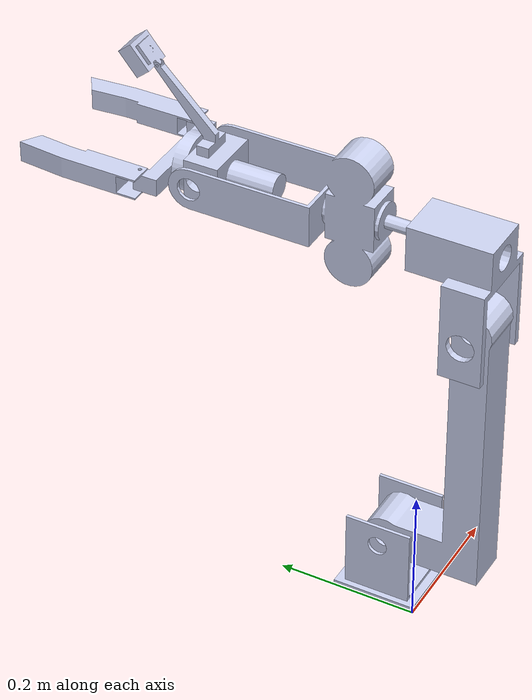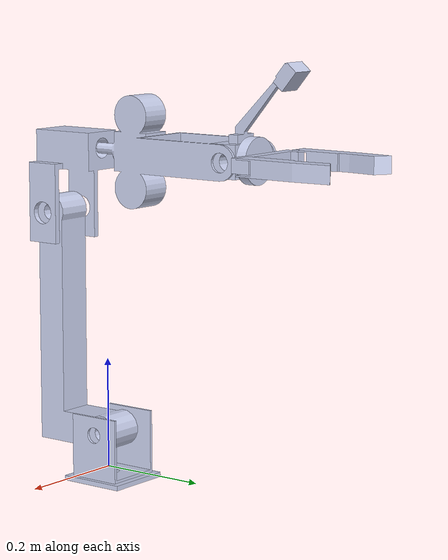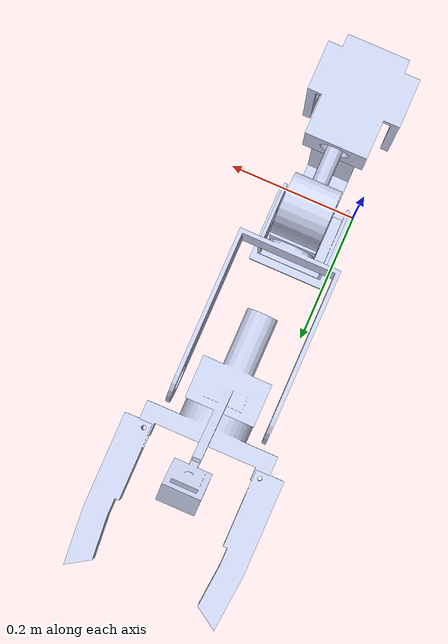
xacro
<?xml version="1.0"?>
<robot xmlns:xacro="http://www.ros.org/wiki/xacro" name="Arm_URDF_2025">
    <xacro:arg name="initial_positions_file" default="initial_positions.yaml" />

    <!-- Import Arm_URDF_2025 urdf file -->
    <xacro:include filename="$(find simulation)/urdfs/Arm_URDF_2025.urdf" />

    <!-- Import control_xacro -->
    <xacro:include filename="Arm_URDF_2025.ros2_control.xacro" />

    <xacro:Arm_URDF_2025_ros2_control name="FakeSystem" initial_positions_file="$(arg initial_positions_file)"/>

</robot>

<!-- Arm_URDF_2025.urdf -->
<robot
  name="Arm_URDF_2025">
  <link
    name="base_link">
    <inertial>
      <origin
        xyz="0.06 0.06 0.00437247635063724"
        rpy="0 0 0" />
      <mass
        value="0.124661946710585" />
      <inertia
        ixx="0.000147804282431458"
        ixy="-2.46473848275475E-20"
        ixz="-5.95512543966335E-22"
        iyy="0.000147804282431458"
        iyz="1.60346272184515E-21"
        izz="0.000293922860163162" />
    </inertial>
    <visual>
      <origin
        xyz="0 0 0"
        rpy="0 0 0" />
      <geometry>
        <mesh
          filename="package://simulation/meshes/Arm_URDF_2025/base_link.STL" />
      </geometry>
      <material
        name="">
        <color
          rgba="0.792156862745098 0.819607843137255 0.933333333333333 1" />
      </material>
    </visual>
    <collision>
      <origin
        xyz="0 0 0"
        rpy="0 0 0" />
      <geometry>
        <mesh
          filename="package://simulation/meshes/Arm_URDF_2025/base_link.STL" />
      </geometry>
    </collision>
  </link>
  <link
    name="link_1">
    <inertial>
      <origin
        xyz="-5.48442406074559E-07 -7.17314944642876E-17 0.0336041265825655"
        rpy="0 0 0" />
      <mass
        value="0.137634968166129" />
      <inertia
        ixx="0.000446367257769463"
        ixy="-2.36293542467549E-19"
        ixz="3.10211596816188E-09"
        iyy="0.000294001564310723"
        iyz="3.2777969911918E-19"
        izz="0.000373994827351754" />
    </inertial>
    <visual>
      <origin
        xyz="0 0 0"
        rpy="0 0 0" />
      <geometry>
        <mesh
          filename="package://simulation/meshes/Arm_URDF_2025/link_1.STL" />
      </geometry>
      <material
        name="">
        <color
          rgba="0.792156862745098 0.819607843137255 0.933333333333333 1" />
      </material>
    </visual>
    <collision>
      <origin
        xyz="0 0 0"
        rpy="0 0 0" />
      <geometry>
        <mesh
          filename="package://simulation/meshes/Arm_URDF_2025/link_1.STL" />
      </geometry>
    </collision>
  </link>
  <joint
    name="joint_1"
    type="continuous">
    <origin
      xyz="0.06 0.06 0.0135"
      rpy="0 0 1.57" />
    <parent
      link="base_link" />
    <child
      link="link_1" />
    <axis
      xyz="0 0 -1" />
  </joint>
  <link
    name="link_2">
    <inertial>
      <origin
        xyz="-0.0966215327084988 0.0316225 0.148851302099507"
        rpy="0 0 0" />
      <mass
        value="1.79663833155198" />
      <inertia
        ixx="0.0329129866831077"
        ixy="4.55700567273967E-19"
        ixz="0.00437798607290387"
        iyy="0.0349483664750651"
        iyz="-1.58372106889851E-18"
        izz="0.0032331177263641" />
    </inertial>
    <visual>
      <origin
        xyz="0 0 0"
        rpy="0 0 0" />
      <geometry>
        <mesh
          filename="package://simulation/meshes/Arm_URDF_2025/link_2.STL" />
      </geometry>
      <material
        name="">
        <color
          rgba="0.792156862745098 0.819607843137255 0.933333333333333 1" />
      </material>
    </visual>
    <collision>
      <origin
        xyz="0 0 0"
        rpy="0 0 0" />
      <geometry>
        <mesh
          filename="package://simulation/meshes/Arm_URDF_2025/link_2.STL" />
      </geometry>
    </collision>
  </link>
  <joint
    name="joint_2"
    type="continuous">
    <origin
      xyz="1.24999999999858E-05 -0.03162775 0.0747000000000002"
      rpy="0 0 0" />
    <parent
      link="link_1" />
    <child
      link="link_2" />
    <axis
      xyz="0 -1 0" />
  </joint>
  <link
    name="link_3">
    <inertial>
      <origin
        xyz="0.022527417749687 0.036975 0.0885307406770253"
        rpy="0 0 0" />
      <mass
        value="0.622999243464079" />
      <inertia
        ixx="0.00200228691765054"
        ixy="6.55630474936292E-20"
        ixz="-0.000294247168897306"
        iyy="0.0020516448574634"
        iyz="-5.6058962694986E-19"
        izz="0.00138625401056328" />
    </inertial>
    <visual>
      <origin
        xyz="0 0 0"
        rpy="0 0 0" />
      <geometry>
        <mesh
          filename="package://simulation/meshes/Arm_URDF_2025/link_3.STL" />
      </geometry>
      <material
        name="">
        <color
          rgba="0.792156862745098 0.819607843137255 0.933333333333333 1" />
      </material>
    </visual>
    <collision>
      <origin
        xyz="0 0 0"
        rpy="0 0 0" />
      <geometry>
        <mesh
          filename="package://simulation/meshes/Arm_URDF_2025/link_3.STL" />
      </geometry>
    </collision>
  </link>
  <joint
    name="joint_3"
    type="continuous">
    <origin
      xyz="-0.112992 0 0.384077"
      rpy="0 0 0" />
    <parent
      link="link_2" />
    <child
      link="link_3" />
    <axis
      xyz="0 1 0" />
  </joint>
  <link
    name="link_4">
    <inertial>
      <origin
        xyz="0.10524344492505 -7.05797014825815E-08 0"
        rpy="0 0 0" />
      <mass
        value="0.970122911594951" />
      <inertia
        ixx="0.00243457030866732"
        ixy="4.63516303360271E-09"
        ixz="-1.67537061699453E-19"
        iyy="0.00385833789304732"
        iyz="-8.80629759801178E-19"
        izz="0.00256309318654037" />
    </inertial>
    <visual>
      <origin
        xyz="0 0 0"
        rpy="0 0 0" />
      <geometry>
        <mesh
          filename="package://simulation/meshes/Arm_URDF_2025/link_4.STL" />
      </geometry>
      <material
        name="">
        <color
          rgba="0.792156862745098 0.819607843137255 0.933333333333333 1" />
      </material>
    </visual>
    <collision>
      <origin
        xyz="0 0 0"
        rpy="0 0 0" />
      <geometry>
        <mesh
          filename="package://simulation/meshes/Arm_URDF_2025/link_4.STL" />
      </geometry>
    </collision>
  </link>
  <joint
    name="joint_4"
    type="continuous">
    <origin
      xyz="0.084452 0.036975 0.115"
      rpy="0 0 0" />
    <parent
      link="link_3" />
    <child
      link="link_4" />
    <axis
      xyz="1 0 0" />
  </joint>
  <link
    name="link_5">
    <inertial>
      <origin
        xyz="-0.0198884732871961 0.0406401113330525 0.00629862989332275"
        rpy="0 0 0" />
      <mass
        value="0.284717288401274" />
      <inertia
        ixx="0.000299965546841619"
        ixy="-1.58843113349382E-09"
        ixz="-8.63807918048834E-05"
        iyy="0.000511230229605918"
        iyz="-2.43986556603002E-09"
        izz="0.000420975876271412" />
    </inertial>
    <visual>
      <origin
        xyz="0 0 0"
        rpy="0 0 0" />
      <geometry>
        <mesh
          filename="package://simulation/meshes/Arm_URDF_2025/link_5.STL" />
      </geometry>
      <material
        name="">
        <color
          rgba="0.792156862745098 0.819607843137255 0.933333333333333 1" />
      </material>
    </visual>
    <collision>
      <origin
        xyz="0 0 0"
        rpy="0 0 0" />
      <geometry>
        <mesh
          filename="package://simulation/meshes/Arm_URDF_2025/link_5.STL" />
      </geometry>
    </collision>
  </link>
  <joint
    name="joint_5"
    type="continuous">
    <origin
      xyz="0.305479 -0.0406420000000001 0"
      rpy="0 0 0" />
    <parent
      link="link_4" />
    <child
      link="link_5" />
    <axis
      xyz="0 -1 0" />
  </joint>
  <link
    name="link_6">
    <inertial>
      <origin
        xyz="0.00692827119863587 3.3907380514453E-09 1.11022302462516E-16"
        rpy="0 0 0" />
      <mass
        value="0.175170524925624" />
      <inertia
        ixx="0.000293643764169239"
        ixy="-1.03961089729387E-11"
        ixz="2.2784964648173E-20"
        iyy="5.11611215542502E-05"
        iyz="-1.11398912388781E-20"
        izz="0.00026066688002045" />
    </inertial>
    <visual>
      <origin
        xyz="0 0 0"
        rpy="0 0 0" />
      <geometry>
        <mesh
          filename="package://simulation/meshes/Arm_URDF_2025/link_6.STL" />
      </geometry>
      <material
        name="">
        <color
          rgba="0.792156862745098 0.819607843137255 0.933333333333333 1" />
      </material>
    </visual>
    <collision>
      <origin
        xyz="0 0 0"
        rpy="0 0 0" />
      <geometry>
        <mesh
          filename="package://simulation/meshes/Arm_URDF_2025/link_6.STL" />
      </geometry>
    </collision>
  </link>
  <joint
    name="joint_6"
    type="continuous">
    <origin
      xyz="0.032 0.04064 0"
      rpy="0 0 0" />
    <parent
      link="link_5" />
    <child
      link="link_6" />
    <axis
      xyz="1 0 0" />
  </joint>
  <link
    name="finger_1">
    <inertial>
      <origin
        xyz="0.0855523666641121 0.00980197809754374 -0.015"
        rpy="0 0 0" />
      <mass
        value="0.131585801201098" />
      <inertia
        ixx="2.06584333808883E-05"
        ixy="-1.27622966682436E-06"
        ixz="2.59268411809251E-20"
        iyy="0.000250311821820243"
        iyz="-7.77707182589073E-22"
        izz="0.000250190068564209" />
    </inertial>
    <visual>
      <origin
        xyz="0 0 0"
        rpy="0 0 0" />
      <geometry>
        <mesh
          filename="package://simulation/meshes/Arm_URDF_2025/finger_1.STL" />
      </geometry>
      <material
        name="">
        <color
          rgba="0.792156862745098 0.819607843137255 0.933333333333333 1" />
      </material>
    </visual>
    <collision>
      <origin
        xyz="0 0 0"
        rpy="0 0 0" />
      <geometry>
        <mesh
          filename="package://simulation/meshes/Arm_URDF_2025/finger_1.STL" />
      </geometry>
    </collision>
  </link>
  <joint
    name="finger_joint_1"
    type="continuous">
    <origin
      xyz="0.0342469999999999 0.0690450000000001 0.0150000000000005"
      rpy="0 0 0" />
    <parent
      link="link_6" />
    <child
      link="finger_1" />
    <axis
      xyz="0 0 1" />
  </joint>
  <link
    name="finger_2">
    <inertial>
      <origin
        xyz="0.0855523666641121 -0.00980197809754374 -0.0150000000000001"
        rpy="0 0 0" />
      <mass
        value="0.131585801201098" />
      <inertia
        ixx="2.06584333808883E-05"
        ixy="1.2762296668244E-06"
        ixz="4.6284791662046E-20"
        iyy="0.000250311821820244"
        iyz="4.87544459169818E-21"
        izz="0.00025019006856421" />
    </inertial>
    <visual>
      <origin
        xyz="0 0 0"
        rpy="0 0 0" />
      <geometry>
        <mesh
          filename="package://simulation/meshes/Arm_URDF_2025/finger_2.STL" />
      </geometry>
      <material
        name="">
        <color
          rgba="0.792156862745098 0.819607843137255 0.933333333333333 1" />
      </material>
    </visual>
    <collision>
      <origin
        xyz="0 0 0"
        rpy="0 0 0" />
      <geometry>
        <mesh
          filename="package://simulation/meshes/Arm_URDF_2025/finger_2.STL" />
      </geometry>
    </collision>
  </link>
  <joint
    name="finger_joint_2"
    type="continuous">
    <origin
      xyz="0.0342469999999999 -0.0690460000000001 0.015"
      rpy="0 0 0" />
    <parent
      link="link_6" />
    <child
      link="finger_2" />
    <axis
      xyz="0 0 -1" />
  </joint>
  <link
    name="camera_link">
    <inertial>
      <origin
        xyz="0.0237078925078273 0.00399999999999998 0.00849517559098378"
        rpy="0 0 0" />
      <mass
        value="0.0455289011770119" />
      <inertia
        ixx="1.08276639266657E-05"
        ixy="1.63536654407214E-21"
        ixz="-2.23258863162784E-06"
        iyy="8.28802476045037E-06"
        iyz="-3.16596447731408E-21"
        izz="1.00403327015078E-05" />
    </inertial>
    <visual>
      <origin
        xyz="0 0 0"
        rpy="0 0 0" />
      <geometry>
        <mesh
          filename="package://simulation/meshes/Arm_URDF_2025/camera_link.STL" />
      </geometry>
      <material
        name="">
        <color
          rgba="0.792156862745098 0.819607843137255 0.933333333333333 1" />
      </material>
    </visual>
    <collision>
      <origin
        xyz="0 0 0"
        rpy="0 0 0" />
      <geometry>
        <mesh
          filename="package://simulation/meshes/Arm_URDF_2025/camera_link.STL" />
      </geometry>
    </collision>
  </link>
  <joint
    name="camera_joint"
    type="continuous">
    <origin
      xyz="0.0756084691443581 0.0366419123913177 0.133665837449048"
      rpy="0 0 0" />
    <parent
      link="link_5" />
    <child
      link="camera_link" />
    <axis
      xyz="0 1 0" />
  </joint>
</robot>
